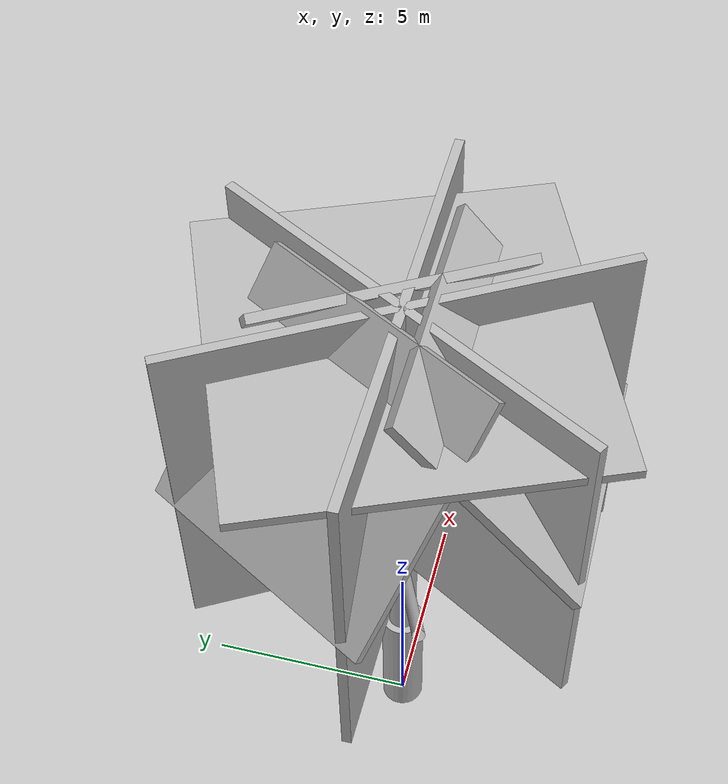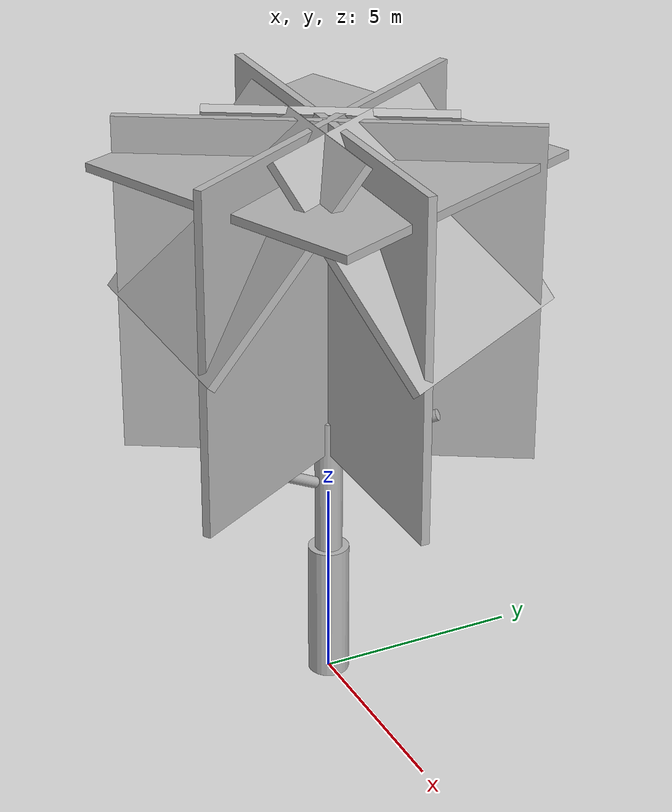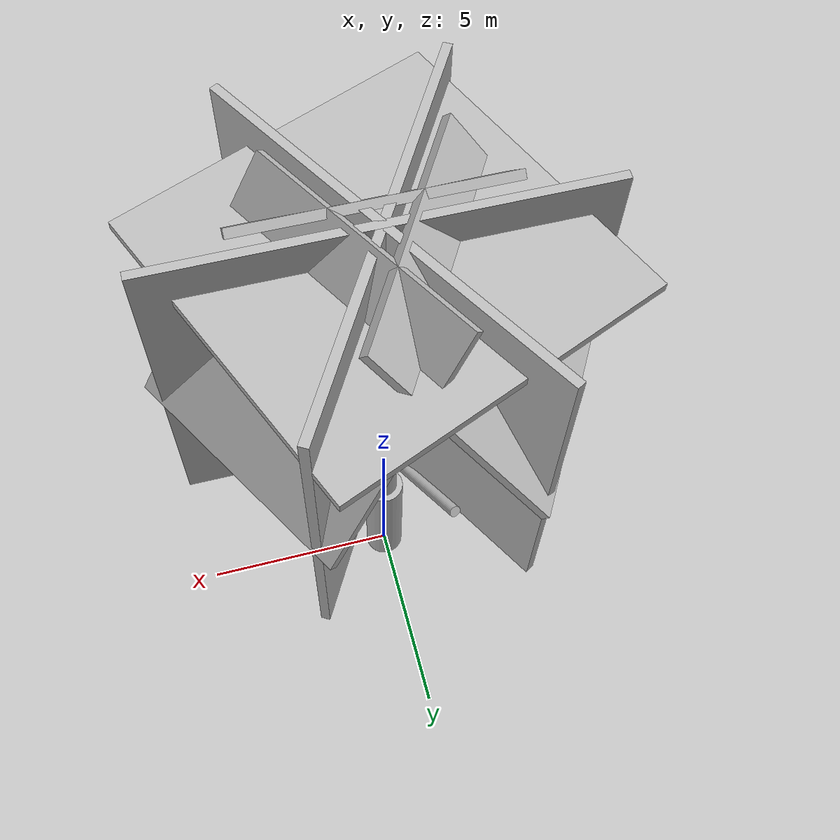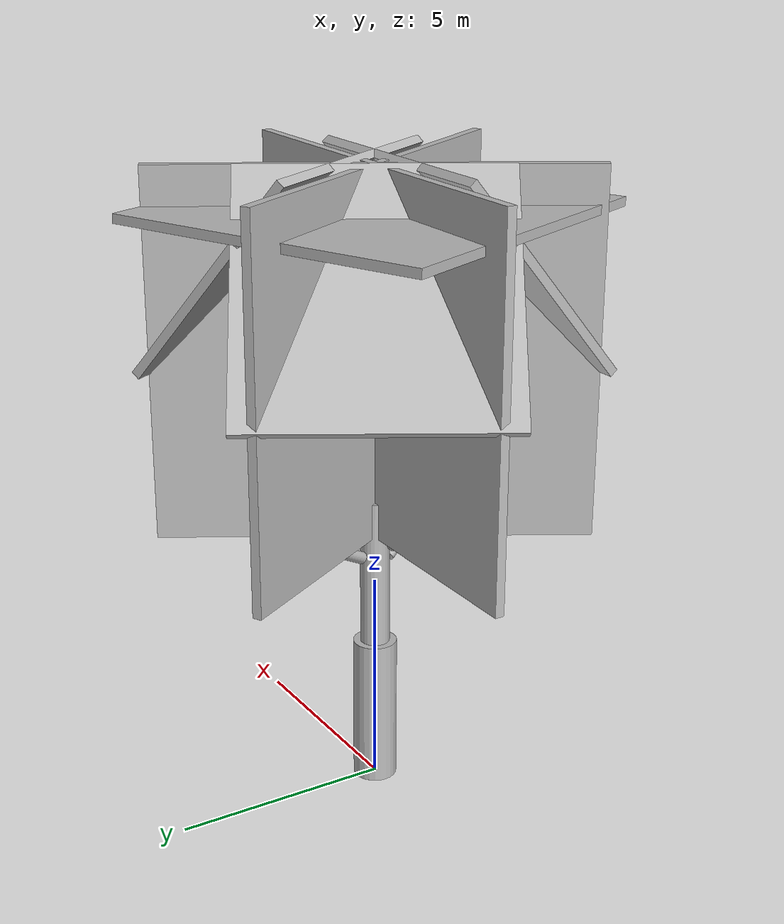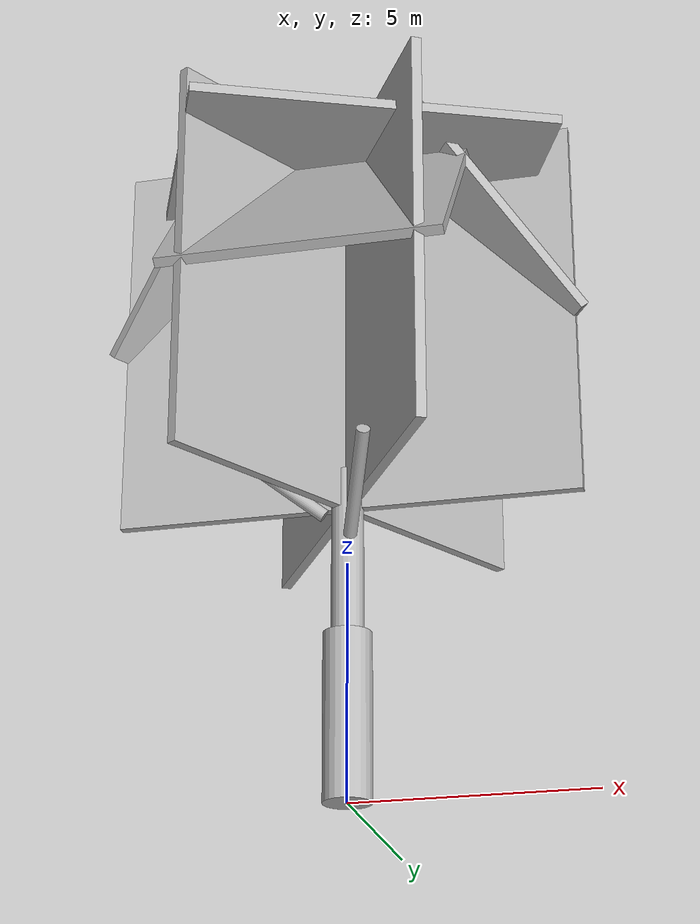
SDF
<?xml version="1.0" ?>
<sdf version="1.9">
  <model name="realistic_tree_mahogany_large">
    <static>true</static>
    <link name="body">

      <!-- ================= BATANG (trunk) — skala ~1.4x dari versi standar ================= -->
      <visual name="trunk_lower">
        <pose>0 0 1.75 0 0 0</pose>
        <geometry><cylinder><radius>0.504</radius><length>3.5</length></cylinder></geometry>
        <material>
          <pbr><metal>
            <albedo_map>model://realistic_tree_mahogany/materials/textures/bark_albedo.png</albedo_map>
            <normal_map>model://realistic_tree_mahogany/materials/textures/bark_normal.png</normal_map>
            <roughness_map>model://realistic_tree_mahogany/materials/textures/bark_roughness.png</roughness_map>
          </metal></pbr>
        </material>
      </visual>
      <visual name="trunk_upper">
        <pose>0 0 5.25 0 0 0</pose>
        <geometry><cylinder><radius>0.336</radius><length>3.5</length></cylinder></geometry>
        <material>
          <pbr><metal>
            <albedo_map>model://realistic_tree_mahogany/materials/textures/bark_albedo.png</albedo_map>
            <normal_map>model://realistic_tree_mahogany/materials/textures/bark_normal.png</normal_map>
            <roughness_map>model://realistic_tree_mahogany/materials/textures/bark_roughness.png</roughness_map>
          </metal></pbr>
        </material>
      </visual>

      <!-- ================= CABANG (branches) ================= -->
      <visual name="branch_1">
        <pose>1.721 0.461 7.116 0 1.0123 0.2618</pose>
        <geometry><cylinder><radius>0.14</radius><length>3.08</length></cylinder></geometry>
        <material><pbr><metal>
          <albedo_map>model://realistic_tree_mahogany/materials/textures/bark_albedo.png</albedo_map>
          <normal_map>model://realistic_tree_mahogany/materials/textures/bark_normal.png</normal_map>
        </metal></pbr></material>
      </visual>
      <visual name="branch_2">
        <pose>-0.586 1.609 6.397 0 1.0821 1.9199</pose>
        <geometry><cylinder><radius>0.14</radius><length>2.8</length></cylinder></geometry>
        <material><pbr><metal>
          <albedo_map>model://realistic_tree_mahogany/materials/textures/bark_albedo.png</albedo_map>
          <normal_map>model://realistic_tree_mahogany/materials/textures/bark_normal.png</normal_map>
        </metal></pbr></material>
      </visual>
      <visual name="branch_3">
        <pose>-1.74 -0.633 6.984 0 0.9599 3.4907</pose>
        <geometry><cylinder><radius>0.14</radius><length>3.36</length></cylinder></geometry>
        <material><pbr><metal>
          <albedo_map>model://realistic_tree_mahogany/materials/textures/bark_albedo.png</albedo_map>
          <normal_map>model://realistic_tree_mahogany/materials/textures/bark_normal.png</normal_map>
        </metal></pbr></material>
      </visual>
      <visual name="branch_4">
        <pose>0.557 -1.53 6.125 0 1.0472 5.0615</pose>
        <geometry><cylinder><radius>0.14</radius><length>2.66</length></cylinder></geometry>
        <material><pbr><metal>
          <albedo_map>model://realistic_tree_mahogany/materials/textures/bark_albedo.png</albedo_map>
          <normal_map>model://realistic_tree_mahogany/materials/textures/bark_normal.png</normal_map>
        </metal></pbr></material>
      </visual>
      <visual name="branch_5">
        <pose>0.999 1.191 6.943 0 1.1345 0.8727</pose>
        <geometry><cylinder><radius>0.14</radius><length>2.38</length></cylinder></geometry>
        <material><pbr><metal>
          <albedo_map>model://realistic_tree_mahogany/materials/textures/bark_albedo.png</albedo_map>
          <normal_map>model://realistic_tree_mahogany/materials/textures/bark_normal.png</normal_map>
        </metal></pbr></material>
      </visual>

      <!-- ================= TAJUK DAUN (canopy), center_z=10.36 ================= -->
      <visual name="canopy_vert_1">
        <pose>0 0 10.36 0 0 0</pose>
        <geometry><box><size>9.8 0.21 8.4</size></box></geometry>
        <material><double_sided>true</double_sided>
          <pbr><metal><albedo_map>model://realistic_tree_mahogany/materials/textures/leaf_albedo.png</albedo_map></metal></pbr>
        </material>
      </visual>
      <visual name="canopy_vert_2">
        <pose>0 0 10.36 0 0 1.0472</pose>
        <geometry><box><size>9.8 0.21 8.4</size></box></geometry>
        <material><double_sided>true</double_sided>
          <pbr><metal><albedo_map>model://realistic_tree_mahogany/materials/textures/leaf_albedo.png</albedo_map></metal></pbr>
        </material>
      </visual>
      <visual name="canopy_vert_3">
        <pose>0 0 10.36 0 0 2.0944</pose>
        <geometry><box><size>9.8 0.21 8.4</size></box></geometry>
        <material><double_sided>true</double_sided>
          <pbr><metal><albedo_map>model://realistic_tree_mahogany/materials/textures/leaf_albedo.png</albedo_map></metal></pbr>
        </material>
      </visual>

      <visual name="canopy_shoulder_1">
        <pose>2.043 1.18 12.34 0 0.8727 0.5236</pose>
        <geometry><box><size>5.88 5.88 0.21</size></box></geometry>
        <material><double_sided>true</double_sided>
          <pbr><metal><albedo_map>model://realistic_tree_mahogany/materials/textures/leaf_albedo.png</albedo_map></metal></pbr>
        </material>
      </visual>
      <visual name="canopy_shoulder_2">
        <pose>-2.043 1.18 12.34 0 0.8727 2.6180</pose>
        <geometry><box><size>5.88 5.88 0.21</size></box></geometry>
        <material><double_sided>true</double_sided>
          <pbr><metal><albedo_map>model://realistic_tree_mahogany/materials/textures/leaf_albedo.png</albedo_map></metal></pbr>
        </material>
      </visual>
      <visual name="canopy_shoulder_3">
        <pose>0 -2.359 12.34 0 0.8727 4.7124</pose>
        <geometry><box><size>5.88 5.88 0.21</size></box></geometry>
        <material><double_sided>true</double_sided>
          <pbr><metal><albedo_map>model://realistic_tree_mahogany/materials/textures/leaf_albedo.png</albedo_map></metal></pbr>
        </material>
      </visual>

      <visual name="canopy_top_cap">
        <pose>0 0 13.58 0 0 0.4</pose>
        <geometry><box><size>7.7 7.7 0.21</size></box></geometry>
        <material><double_sided>true</double_sided>
          <pbr><metal><albedo_map>model://realistic_tree_mahogany/materials/textures/leaf_albedo.png</albedo_map></metal></pbr>
        </material>
      </visual>

      <!-- ================= COLLISION (disederhanakan) ================= -->
      <collision name="trunk_collision">
        <pose>0 0 3.5 0 0 0</pose>
        <geometry><cylinder><radius>0.588</radius><length>7.0</length></cylinder></geometry>
      </collision>
      <collision name="canopy_collision">
        <pose>0 0 10.36 0 0 0</pose>
        <geometry><ellipsoid><radii>5.6 5.6 4.48</radii></ellipsoid></geometry>
      </collision>

    </link>
  </model>
</sdf>
